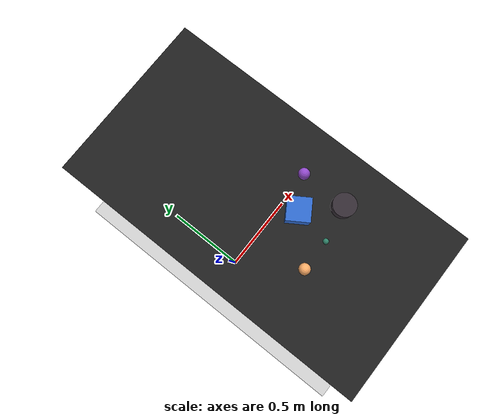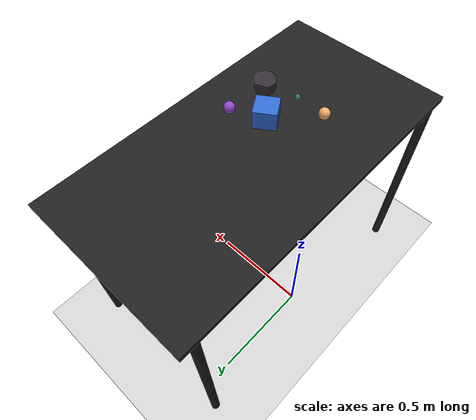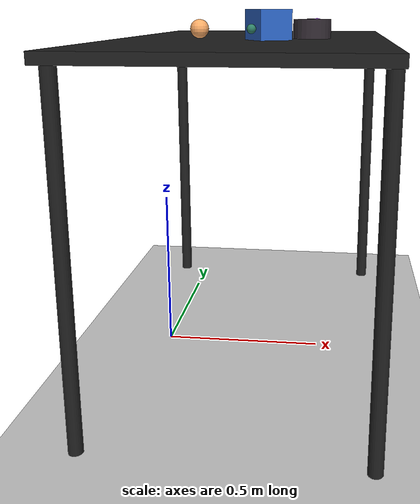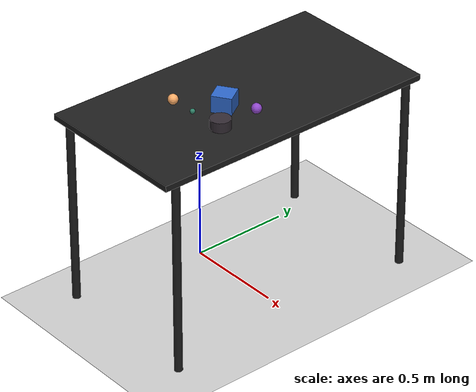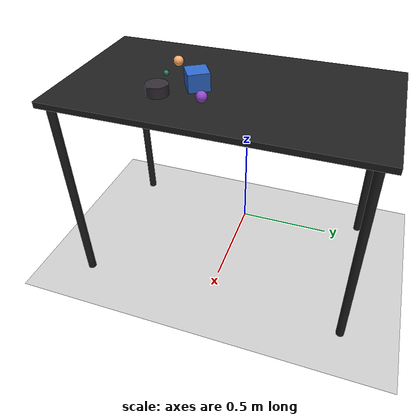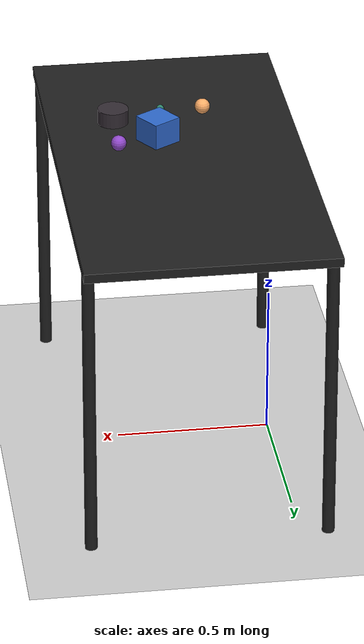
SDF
<?xml version="1.0" ?>
<sdf version="1.6">
  <world name="arm_world">
    <plugin filename="gz-sim-physics-system" name="gz::sim::systems::Physics">
      <engine>
        <filename>libgz-physics-bullet-featherstone-plugin.so</filename>
      </engine>
    </plugin>
    <plugin filename="gz-sim-user-commands-system" name="gz::sim::systems::UserCommands"/>
    <plugin filename="gz-sim-scene-broadcaster-system" name="gz::sim::systems::SceneBroadcaster"/>
    <plugin filename="gz-sim-sensors-system" name="gz::sim::systems::Sensors">
      <render_engine>ogre2</render_engine>
    </plugin>
    <gravity>0.0 0.0 -9.8</gravity>
    <scene>
      <shadows>false</shadows>
    </scene>
    <gui>
      <camera name="user_camera">
        <pose>0.75 -0.75 1.4 0 0.29 2.21</pose>
      </camera>
    </gui>
    <include>
      <uri>https://fuel.gazebosim.org/1.0/OpenRobotics/models/Sun</uri>
    </include>
    <model name="table">
      <static>true</static>
      <include>
        <uri>model://table</uri>
      </include>
      <pose>0.29 0 0 0 0 1.5708</pose>
    </model>
    <model name="ground_plane">
      <static>true</static>
      <link name="link">
        <collision name="collision">
          <geometry>
            <plane>
              <normal>0 0 1</normal>
            </plane>
          </geometry>
          <surface>
            <friction>
              <ode>
                <mu>1.0</mu>
                <mu2>1.0</mu2>
              </ode>
            </friction>
          </surface>
        </collision>
        <visual name="visual">
          <geometry>
            <plane>
              <normal>0 0 1</normal>
              <size>100 100</size>
            </plane>
          </geometry>
          <material>
            <ambient>0.8 0.8 0.8 1</ambient>
            <diffuse>0.8 0.8 0.8 1</diffuse>
            <specular>0.8 0.8 0.8 1</specular>
          </material>
        </visual>
      </link>
    </model>
    <model name="cylinder_l_0">
      <pose>0.477 -0.267 1.05 0 0 1.84</pose>
      <link name="cylinder_l_0_link">
        <inertial>
          <mass>0.05</mass>
          <inertia>
            <ixx>2.04e-7</ixx>
            <iyy>2.04e-7</iyy>
            <izz>3.9e-8</izz>
            <ixy>0</ixy>
            <ixz>0</ixz>
            <iyz>0</iyz>
          </inertia>
        </inertial>
        <collision name="cylinder_l_0_collision">
          <geometry>
            <cylinder>
              <radius>0.05</radius>
              <length>0.05</length>
            </cylinder>
          </geometry>
          <surface>
            <friction>
              <ode>
                <mu>0.8</mu>
                <mu2>0.8</mu2>
                <fdir1>0 0 1</fdir1>
                <slip1>0.001</slip1>
                <slip2>0.001</slip2>
              </ode>
              <torsional>
                <coefficient>0.1</coefficient>
                <surface_radius>0.015</surface_radius>
                <use_patch_radius>true</use_patch_radius>
              </torsional>
            </friction>
            <contact>
              <ode>
                <kp>1e5</kp>
                <kd>10</kd>
                <max_vel>0.1</max_vel>
                <min_depth>0.001</min_depth>
                <soft_cfm>0.01</soft_cfm>
                <soft_erp>0.2</soft_erp>
              </ode>
            </contact>
            <bounce>
              <restitution_coefficient>0.2</restitution_coefficient>
              <threshold>0.01</threshold>
            </bounce>
          </surface>
        </collision>
        <visual name="cylinder_l_0_visual">
          <geometry>
            <cylinder>
              <radius>0.05</radius>
              <length>0.05</length>
            </cylinder>
          </geometry>
          <material>
            <ambient>0.2 0.17 0.2 1</ambient>
            <diffuse>0.2 0.17 0.2 1</diffuse>
          </material>
        </visual>
        <velocity_decay>
          <linear>1</linear>
          <angular>1</angular>
        </velocity_decay>
      </link>
    </model>
    <model name="sphere_m_1">
      <pose>0.483 -0.062 1.05 0 0 4.69</pose>
      <link name="sphere_m_1_link">
        <inertial>
          <mass>0.05</mass>
          <inertia>
            <ixx>2.04e-7</ixx>
            <iyy>2.04e-7</iyy>
            <izz>3.9e-8</izz>
            <ixy>0</ixy>
            <ixz>0</ixz>
            <iyz>0</iyz>
          </inertia>
        </inertial>
        <collision name="sphere_m_1_collision">
          <geometry>
            <sphere>
              <radius>0.025</radius>
            </sphere>
          </geometry>
          <surface>
            <friction>
              <ode>
                <mu>0.8</mu>
                <mu2>0.8</mu2>
                <fdir1>0 0 1</fdir1>
                <slip1>0.001</slip1>
                <slip2>0.001</slip2>
              </ode>
              <torsional>
                <coefficient>0.1</coefficient>
                <surface_radius>0.015</surface_radius>
                <use_patch_radius>true</use_patch_radius>
              </torsional>
            </friction>
            <contact>
              <ode>
                <kp>1e5</kp>
                <kd>10</kd>
                <max_vel>0.1</max_vel>
                <min_depth>0.001</min_depth>
                <soft_cfm>0.01</soft_cfm>
                <soft_erp>0.2</soft_erp>
              </ode>
            </contact>
            <bounce>
              <restitution_coefficient>0.2</restitution_coefficient>
              <threshold>0.01</threshold>
            </bounce>
          </surface>
        </collision>
        <visual name="sphere_m_1_visual">
          <geometry>
            <sphere>
              <radius>0.025</radius>
            </sphere>
          </geometry>
          <material>
            <ambient>0.56 0.28 0.79 1</ambient>
            <diffuse>0.56 0.28 0.79 1</diffuse>
          </material>
        </visual>
        <velocity_decay>
          <linear>1</linear>
          <angular>1</angular>
        </velocity_decay>
      </link>
    </model>
    <model name="cube_l_2">
      <pose>0.347 -0.135 1.05 0 0 2.14</pose>
      <link name="cube_l_2_link">
        <inertial>
          <mass>0.05</mass>
          <inertia>
            <ixx>2.04e-7</ixx>
            <iyy>2.04e-7</iyy>
            <izz>3.9e-8</izz>
            <ixy>0</ixy>
            <ixz>0</ixz>
            <iyz>0</iyz>
          </inertia>
        </inertial>
        <collision name="cube_l_2_collision">
          <geometry>
            <box>
              <size>0.1 0.1 0.1</size>
            </box>
          </geometry>
          <surface>
            <friction>
              <ode>
                <mu>0.8</mu>
                <mu2>0.8</mu2>
                <fdir1>0 0 1</fdir1>
                <slip1>0.001</slip1>
                <slip2>0.001</slip2>
              </ode>
              <torsional>
                <coefficient>0.1</coefficient>
                <surface_radius>0.015</surface_radius>
                <use_patch_radius>true</use_patch_radius>
              </torsional>
            </friction>
            <contact>
              <ode>
                <kp>1e5</kp>
                <kd>10</kd>
                <max_vel>0.1</max_vel>
                <min_depth>0.001</min_depth>
                <soft_cfm>0.01</soft_cfm>
                <soft_erp>0.2</soft_erp>
              </ode>
            </contact>
            <bounce>
              <restitution_coefficient>0.2</restitution_coefficient>
              <threshold>0.01</threshold>
            </bounce>
          </surface>
        </collision>
        <visual name="cube_l_2_visual">
          <geometry>
            <box>
              <size>0.1 0.1 0.1</size>
            </box>
          </geometry>
          <material>
            <ambient>0.18 0.41 0.8 1</ambient>
            <diffuse>0.18 0.41 0.8 1</diffuse>
          </material>
        </visual>
        <velocity_decay>
          <linear>1</linear>
          <angular>1</angular>
        </velocity_decay>
      </link>
    </model>
    <model name="sphere_s_3">
      <pose>0.318 -0.297 1.05 0 0 2.5</pose>
      <link name="sphere_s_3_link">
        <inertial>
          <mass>0.05</mass>
          <inertia>
            <ixx>2.04e-7</ixx>
            <iyy>2.04e-7</iyy>
            <izz>3.9e-8</izz>
            <ixy>0</ixy>
            <ixz>0</ixz>
            <iyz>0</iyz>
          </inertia>
        </inertial>
        <collision name="sphere_s_3_collision">
          <geometry>
            <sphere>
              <radius>0.0125</radius>
            </sphere>
          </geometry>
          <surface>
            <friction>
              <ode>
                <mu>0.8</mu>
                <mu2>0.8</mu2>
                <fdir1>0 0 1</fdir1>
                <slip1>0.001</slip1>
                <slip2>0.001</slip2>
              </ode>
              <torsional>
                <coefficient>0.1</coefficient>
                <surface_radius>0.015</surface_radius>
                <use_patch_radius>true</use_patch_radius>
              </torsional>
            </friction>
            <contact>
              <ode>
                <kp>1e5</kp>
                <kd>10</kd>
                <max_vel>0.1</max_vel>
                <min_depth>0.001</min_depth>
                <soft_cfm>0.01</soft_cfm>
                <soft_erp>0.2</soft_erp>
              </ode>
            </contact>
            <bounce>
              <restitution_coefficient>0.2</restitution_coefficient>
              <threshold>0.01</threshold>
            </bounce>
          </surface>
        </collision>
        <visual name="sphere_s_3_visual">
          <geometry>
            <sphere>
              <radius>0.0125</radius>
            </sphere>
          </geometry>
          <material>
            <ambient>0.18 0.5 0.4 1</ambient>
            <diffuse>0.18 0.5 0.4 1</diffuse>
          </material>
        </visual>
        <velocity_decay>
          <linear>1</linear>
          <angular>1</angular>
        </velocity_decay>
      </link>
    </model>
    <model name="sphere_m_4">
      <pose>0.179 -0.297 1.05 0 0 1.24</pose>
      <link name="sphere_m_4_link">
        <inertial>
          <mass>0.05</mass>
          <inertia>
            <ixx>2.04e-7</ixx>
            <iyy>2.04e-7</iyy>
            <izz>3.9e-8</izz>
            <ixy>0</ixy>
            <ixz>0</ixz>
            <iyz>0</iyz>
          </inertia>
        </inertial>
        <collision name="sphere_m_4_collision">
          <geometry>
            <sphere>
              <radius>0.025</radius>
            </sphere>
          </geometry>
          <surface>
            <friction>
              <ode>
                <mu>0.8</mu>
                <mu2>0.8</mu2>
                <fdir1>0 0 1</fdir1>
                <slip1>0.001</slip1>
                <slip2>0.001</slip2>
              </ode>
              <torsional>
                <coefficient>0.1</coefficient>
                <surface_radius>0.015</surface_radius>
                <use_patch_radius>true</use_patch_radius>
              </torsional>
            </friction>
            <contact>
              <ode>
                <kp>1e5</kp>
                <kd>10</kd>
                <max_vel>0.1</max_vel>
                <min_depth>0.001</min_depth>
                <soft_cfm>0.01</soft_cfm>
                <soft_erp>0.2</soft_erp>
              </ode>
            </contact>
            <bounce>
              <restitution_coefficient>0.2</restitution_coefficient>
              <threshold>0.01</threshold>
            </bounce>
          </surface>
        </collision>
        <visual name="sphere_m_4_visual">
          <geometry>
            <sphere>
              <radius>0.025</radius>
            </sphere>
          </geometry>
          <material>
            <ambient>0.98 0.67 0.4 1</ambient>
            <diffuse>0.98 0.67 0.4 1</diffuse>
          </material>
        </visual>
        <velocity_decay>
          <linear>1</linear>
          <angular>1</angular>
        </velocity_decay>
      </link>
    </model>
  </world>
</sdf>

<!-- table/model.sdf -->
<sdf version="1.5">
  <model name="table">
    <static>true</static>
    <link name="link">
      <collision name="surface">
        <pose>0 0 1.0 0 0 0</pose>
        <geometry>
          <box>
            <size>1.5 0.8 0.03</size>
          </box>
        </geometry>
        <surface>
          <friction>
            <ode>
              <mu>0.6</mu>
              <mu2>0.6</mu2>
            </ode>
          </friction>
        </surface>
      </collision>
      <visual name="surface">
        <pose>0 0 1.0 0 0 0</pose>
        <geometry>
          <box>
            <size>1.5 0.8 0.03</size>
          </box>
        </geometry>
        <material>
          <script>
            <uri>file://media/materials/scripts/gazebo.material</uri>
            <name>Gazebo/Black</name>
          </script>
        </material>
      </visual>
      <collision name="front_left_leg">
        <pose>0.68 0.38 0.5 0 0 0</pose>
        <geometry>
          <cylinder>
            <radius>0.02</radius>
            <length>1.0</length>
          </cylinder>
        </geometry>
      </collision>
      <visual name="front_left_leg">
        <pose>0.68 0.38 0.5 0 0 0</pose>
        <geometry>
          <cylinder>
            <radius>0.02</radius>
            <length>1.0</length>
          </cylinder>
        </geometry>
        <material>
          <script>
            <uri>file://media/materials/scripts/gazebo.material</uri>
            <name>Gazebo/Black</name>
          </script>
        </material>
      </visual>
      <collision name="front_right_leg">
        <pose>0.68 -0.38 0.5 0 0 0</pose>
        <geometry>
          <cylinder>
            <radius>0.02</radius>
            <length>1.0</length>
          </cylinder>
        </geometry>
      </collision>
      <visual name="front_right_leg">
        <pose>0.68 -0.38 0.5 0 0 0</pose>
        <geometry>
          <cylinder>
            <radius>0.02</radius>
            <length>1.0</length>
          </cylinder>
        </geometry>
        <material>
          <script>
            <uri>file://media/materials/scripts/gazebo.material</uri>
            <name>Gazebo/Black</name>
          </script>
        </material>
      </visual>
      <collision name="back_right_leg">
        <pose>-0.68 -0.38 0.5 0 0 0</pose>
        <geometry>
          <cylinder>
            <radius>0.02</radius>
            <length>1.0</length>
          </cylinder>
        </geometry>
      </collision>
      <visual name="back_right_leg">
        <pose>-0.68 -0.38 0.5 0 0 0</pose>
        <geometry>
          <cylinder>
            <radius>0.02</radius>
            <length>1.0</length>
          </cylinder>
        </geometry>
        <material>
          <script>
            <uri>file://media/materials/scripts/gazebo.material</uri>
            <name>Gazebo/Black</name>
          </script>
        </material>
      </visual>
      <collision name="back_left_leg">
        <pose>-0.68 0.38 0.5 0 0 0</pose>
        <geometry>
          <cylinder>
            <radius>0.02</radius>
            <length>1.0</length>
          </cylinder>
        </geometry>
      </collision>
      <visual name="back_left_leg">
        <pose>-0.68 0.38 0.5 0 0 0</pose>
        <geometry>
          <cylinder>
            <radius>0.02</radius>
            <length>1.0</length>
          </cylinder>
        </geometry>
        <material>
          <script>
            <uri>file://media/materials/scripts/gazebo.material</uri>
            <name>Gazebo/Black</name>
          </script>
        </material>
      </visual>
    </link>
  </model>
</sdf>
